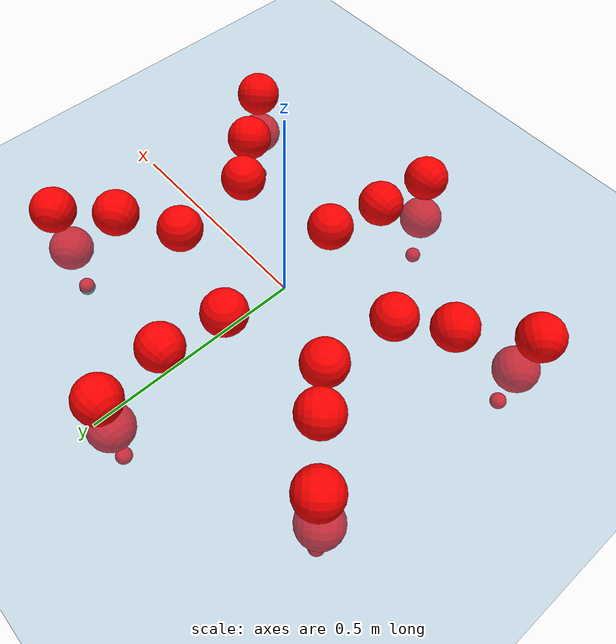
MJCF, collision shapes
<mujoco model="Golem">
  <compiler angle="radian" assetdir="assets" balanceinertia="true" inertiafromgeom="false"/>

  <option timestep="0.005" density="1.2" viscosity="2e-05"/>

  <size nkey="1"/>

  <visual>
    <quality shadowsize="8192"/>
    <map shadowclip="0.5"/>
  </visual>

  <default>
    <default class="/">
      <joint armature="0.01" damping="0.01" frictionloss="0.01"/>
      <geom contype="0" conaffinity="0" group="1" solref="-1000 -80"/>
      <site size="0.01 0.005 0.005" group="5"/>
      <general forcelimited="true" biastype="affine" gainprm="25" biasprm="0 -25 -0.5"/>
      <default class="visual">
        <geom type="mesh" group="2"/>
      </default>
      <default class="collision">
        <geom group="3"/>
      </default>
      <default class="foot">
        <geom size="0.01 0 0" condim="6" group="4" priority="1" solimp="0.015 1 0.01"/>
      </default>
      <default class="reward_collision_sphere">
        <geom group="5" rgba="1 0 0 1"/>
      </default>
    </default>
  </default>

  <asset>
    <texture type="skybox" colorspace="auto" name="//unnamed_texture_0" builtin="gradient" rgb1="0.95 0.95 0.95" rgb2="0.95 0.95 0.95" width="100" height="600"/>
    <texture type="2d" colorspace="auto" name="texplane" builtin="checker" rgb1="0.345 0.575 0.748" rgb2="0.345 0.575 0.748" markrgb="1 1 1" width="512" height="512"/>
    <material name="MatPlane" class="/" texture="texplane" texuniform="true" texrepeat="2 2" specular="0.9"/>
    <mesh name="body" class="/" file="body.stl" scale="0.001 0.001 0.001"/>
    <mesh name="coxa" class="/" file="coxa.stl" scale="0.001 0.001 0.001"/>
    <mesh name="femur" class="/" file="femur.stl" scale="0.001 0.001 0.001"/>
    <mesh name="tibia" class="/" file="tibia.stl" scale="0.001 0.001 0.001"/>
    <mesh name="tarsus" class="/" file="tarsus.stl" scale="0.001 0.001 0.001"/>
  </asset>

  <worldbody>
    <geom name="floor" class="/" size="100 100 0.125" type="plane" group="0" material="MatPlane"/>
    <light name="toplight_shadow" class="/" pos="0 0 5" dir="0.0990148 0.0990148 -0.990148" type="directional" ambient="0.04 0.04 0.04" diffuse="0.55 0.55 0.55" specular="0.12 0.12 0.12"/>
    <light name="toplight_fill" class="/" pos="0 0 5" dir="0.0990148 0.0990148 -0.990148" type="directional" castshadow="false" ambient="0.04 0.04 0.04" diffuse="0.3 0.3 0.3" specular="0.08 0.08 0.08"/>
    <body name="trunk" pos="0.0141848 -0.00225704 -0.00405936" quat="0.999961 0.000206431 -0.00879418 -0.000256355">
      <inertial pos="0.00689255 -0.0187715 -0.0174374" quat="0.998211 -0.0354105 0.0278522 -0.0393193" mass="9.07828" diaginertia="0.0914805 0.0563637 0.0100975"/>
      <joint name="//unnamed_joint_0" type="free"/>
      <geom name="//unnamed_geom_1" class="/" pos="0 0 0.0630094" quat="1 0 0 0" type="mesh" rgba="0.9 0.9 0.9 1" mesh="body"/>
      <site name="imu" class="/" pos="0.212774 -0.0782497 0.155063" size="0.0132174"/>
      <camera name="track" class="/" pos="0 -2.90541 0" quat="0.707107 0.707107 0 0" mode="trackcom"/>
      <camera name="ego_camera" class="/" pos="0.198641 0 0.0984521" quat="-0.5 -0.5 0.5 0.5"/>
      <body name="coxa_RR" pos="-0.276222 -0.136448 0.0551021" quat="0.376724 -0.00361065 -0.0033273 -0.926313">
        <inertial pos="-0.0130385 -0.0104546 -0.0108714" quat="0.995491 0.0837401 0.0337191 -0.0291284" mass="0.281375" diaginertia="0.0667836 0.0450784 0.00809246"/>
        <joint name="coxa_joint_RR" class="/" pos="0 0 0" axis="-0.00218193 0.011415 -0.999932" range="-3.13475 3.51633" armature="0.000987166" damping="0" frictionloss="0.0143068"/>
        <geom name="//unnamed_geom_2" class="/" type="mesh" rgba="0.2 0.2 0.2 1" mesh="coxa"/>
        <geom name="//unnamed_geom_3" class="reward_collision_sphere" size="0.0528697" pos="-0.0458401 0 0"/>
        <body name="femur_RR" pos="0.0802245 -0.0165062 0.00266274" quat="0.498522 -0.505024 0.496418 0.499995">
          <inertial pos="-0.0170414 -0.0103116 0.0030379" quat="0.996565 0.0483985 -0.000727608 -0.0672022" mass="0.48087" diaginertia="0.0854162 0.0666476 0.00877655"/>
          <joint name="femur_joint_RR" class="/" pos="0 0 0" axis="-0.00431058 -0.0111961 -0.999928" range="-3.38474 3.39484" armature="0.0127871" damping="0.0903272" frictionloss="0.00643719"/>
          <geom name="//unnamed_geom_4" class="/" type="mesh" rgba="0.9 0.9 0.9 1" mesh="femur"/>
          <geom name="//unnamed_geom_5" class="reward_collision_sphere" size="0.0528697"/>
          <body name="tibia_RR" pos="-0.00131196 -0.174859 -0.0127632" quat="-0.00460968 0.999983 0.00321871 -0.00166251">
            <inertial pos="0.014443 -0.00501985 -0.00434381" quat="0.998645 0.0341884 0.00812022 0.038393" mass="0.340691" diaginertia="0.0703342 0.0661713 0.00729705"/>
            <joint name="tibia_joint_RR" class="/" pos="0 0 0" axis="0.0730077 -0.0251808 0.997013" range="-2.94011 3.20081" armature="0.0131836" damping="0.00862292" frictionloss="0.0112184"/>
            <geom name="//unnamed_geom_6" class="/" type="mesh" rgba="0.2 0.2 0.2 1" mesh="tibia"/>
            <geom name="//unnamed_geom_7" class="reward_collision_sphere" size="0.0528697"/>
            <body name="tarsus_RR" pos="0.149815 -0.0136558 -0.00406688" quat="0.99998 -0.00560698 0.00208522 -0.00187435">
              <inertial pos="0.0898465 0.00621368 0.010411" quat="0.505394 0.495538 0.493066 0.50587" mass="0.358669" diaginertia="0.0708667 0.0536001 0.00690463"/>
              <joint name="tarsus_joint_RR" class="/" pos="0 0 0" axis="-0.0181588 -0.0281892 0.999438" range="-3.12564 3.13601" armature="0.00974619" damping="0.00174758" frictionloss="0.0231658"/>
              <geom name="//unnamed_geom_8" class="/" type="mesh" rgba="0.9 0.9 0.9 1" mesh="tarsus"/>
              <geom name="foot_1" class="foot" size="0.0160286" pos="0.171136 0 0" quat="0 -0.707107 0 0.707107"/>
              <geom name="//unnamed_geom_10" class="reward_collision_sphere" size="0.0528697"/>
              <geom name="//unnamed_geom_11" class="reward_collision_sphere" size="0.0198262" pos="0.16426 0 0"/>
              <site name="foot_1" class="foot" pos="0.171136 0 0" quat="0 -0.707107 0 0.707107" size="0.0132174"/>
            </body>
          </body>
        </body>
      </body>
      <body name="coxa_RM" pos="0.0170311 -0.208184 0.0604025" quat="0.708731 0.00207312 -0.00342193 -0.705467">
        <inertial pos="0.0166383 -0.00397201 0.00727098" quat="0.999883 0.0119484 0.00140577 0.00947432" mass="0.35643" diaginertia="0.0745075 0.0437571 0.00697069"/>
        <joint name="coxa_joint_RM" class="/" pos="0 0 0" axis="2.37635e-05 -0.00077707 -1" range="-3.43776 3.17515" armature="0.00325379" damping="0.00608104" frictionloss="0.0151316"/>
        <geom name="//unnamed_geom_12" class="/" type="mesh" rgba="0.2 0.2 0.2 1" mesh="coxa"/>
        <geom name="//unnamed_geom_13" class="reward_collision_sphere" size="0.0528697" pos="-0.0458401 0 0"/>
        <body name="femur_RM" pos="0.10109 -0.0182367 -0.016287" quat="0.501649 -0.503808 0.498632 0.495875">
          <inertial pos="-0.00533465 0.0119601 -0.00977405" quat="0.995844 -0.0883118 0.0222059 0.00185485" mass="0.493685" diaginertia="0.117106 0.0762539 0.0125197"/>
          <joint name="femur_joint_RM" class="/" pos="0 0 0" axis="-0.000341753 0.000507129 -1" range="-2.76877 3.30331" armature="0.0108904" damping="0" frictionloss="0.0135204"/>
          <geom name="//unnamed_geom_14" class="/" type="mesh" rgba="0.9 0.9 0.9 1" mesh="femur"/>
          <geom name="//unnamed_geom_15" class="reward_collision_sphere" size="0.0528697"/>
          <body name="tibia_RM" pos="0.0161971 -0.150494 -0.00855849" quat="0.00506942 0.999956 -0.00633622 -0.00469715">
            <inertial pos="0.0138406 -0.000795779 0.00801377" quat="0.99733 -0.0189106 0.0620324 -0.0335829" mass="0.454373" diaginertia="0.0924775 0.083132 0.0121345"/>
            <joint name="tibia_joint_RM" class="/" pos="0 0 0" axis="0.0285177 0.0314327 0.999099" stiffness="0.0839108" range="-3.14674 3.11425" armature="0.0171707" damping="0.0725821" frictionloss="0.0185229"/>
            <geom name="//unnamed_geom_16" class="/" type="mesh" rgba="0.2 0.2 0.2 1" mesh="tibia"/>
            <geom name="//unnamed_geom_17" class="reward_collision_sphere" size="0.0528697"/>
            <body name="tarsus_RM" pos="0.132277 -0.00904209 0.0146976" quat="0.999965 -0.00614156 -0.00546386 0.00142236">
              <inertial pos="0.0925766 -0.00635515 0.000772067" quat="0.467572 0.489943 0.510137 0.530182" mass="0.463415" diaginertia="0.0805594 0.0649959 0.00682675"/>
              <joint name="tarsus_joint_RM" class="/" pos="0 0 0" axis="0.0140687 -0.0781783 0.99684" range="-2.86417 2.76502" armature="0.0218128" damping="0.00266894" frictionloss="0.0255672"/>
              <geom name="//unnamed_geom_18" class="/" type="mesh" rgba="0.9 0.9 0.9 1" mesh="tarsus"/>
              <geom name="foot_2" class="foot" size="0.00898162" pos="0.171136 0 0" quat="0 -0.707107 0 0.707107"/>
              <geom name="//unnamed_geom_20" class="reward_collision_sphere" size="0.0528697"/>
              <geom name="//unnamed_geom_21" class="reward_collision_sphere" size="0.0198262" pos="0.16426 0 0"/>
              <site name="foot_2" class="foot" pos="0.171136 0 0" quat="0 -0.707107 0 0.707107" size="0.0132174"/>
            </body>
          </body>
        </body>
      </body>
      <body name="coxa_RF" pos="0.288671 -0.136007 0.0629727" quat="0.924746 0.00794096 -0.000150007 -0.380501">
        <inertial pos="-0.016982 -0.0172803 0.00019854" quat="0.99985 0.00602889 -0.0110872 -0.0118449" mass="0.416693" diaginertia="0.0892962 0.0736294 0.00873005"/>
        <joint name="coxa_joint_RF" class="/" pos="0 0 0" axis="-0.00913953 0.051656 -0.998623" stiffness="0.0927495" range="-3.36004 3.48599" armature="0.0201355" damping="0" frictionloss="0.00947973"/>
        <geom name="//unnamed_geom_22" class="/" type="mesh" rgba="0.2 0.2 0.2 1" mesh="coxa"/>
        <geom name="//unnamed_geom_23" class="reward_collision_sphere" size="0.0528697" pos="-0.0458401 0 0"/>
        <body name="femur_RF" pos="0.0784068 -0.00282472 0.00864779" quat="0.500845 -0.494285 0.50566 0.499145">
          <inertial pos="8.69716e-05 0.0123255 -0.0181951" quat="0.996857 0.00446981 -0.0772935 -0.0168044" mass="0.473368" diaginertia="0.103444 0.079406 0.0137823"/>
          <joint name="femur_joint_RF" class="/" pos="0 0 0" axis="-0.0891824 0.0242611 -0.99572" range="-3.03716 3.38215" armature="0" damping="0" frictionloss="0.00355285"/>
          <geom name="//unnamed_geom_24" class="/" type="mesh" rgba="0.9 0.9 0.9 1" mesh="femur"/>
          <geom name="//unnamed_geom_25" class="reward_collision_sphere" size="0.0528697"/>
          <body name="tibia_RF" pos="0.00753312 -0.168271 -0.0057089" quat="0.00250923 0.999983 -0.0029819 0.00435659">
            <inertial pos="0.00127536 0.000625476 0.00291989" quat="0.997213 -0.0452881 0.0109295 0.058277" mass="0.595405" diaginertia="0.0910242 0.073955 0.00837213"/>
            <joint name="tibia_joint_RF" class="/" pos="0 0 0" axis="-0.0333054 -0.0108985 0.999386" stiffness="0.0621248" range="-3.13296 2.79297" armature="0.00913729" damping="0.0138158" frictionloss="0.00703644"/>
            <geom name="//unnamed_geom_26" class="/" type="mesh" rgba="0.2 0.2 0.2 1" mesh="tibia"/>
            <geom name="//unnamed_geom_27" class="reward_collision_sphere" size="0.0528697"/>
            <body name="tarsus_RF" pos="0.132078 -0.0035486 0.00628568" quat="0.999958 0.00912451 0.000748581 0.000779458">
              <inertial pos="0.10036 -1.03682e-05 0.00152154" quat="0.502097 0.550353 0.48103 0.462192" mass="0.528448" diaginertia="0.0939437 0.079017 0.0129247"/>
              <joint name="tarsus_joint_RF" class="/" pos="0 0 0" axis="0.0283422 -0.0335682 0.999034" range="-3.13102 3.22385" armature="0.0142396" damping="0" frictionloss="0.00480183"/>
              <geom name="//unnamed_geom_28" class="/" type="mesh" rgba="0.9 0.9 0.9 1" mesh="tarsus"/>
              <geom name="foot_3" class="foot" size="0.00515646" pos="0.171136 0 0" quat="0 -0.707107 0 0.707107"/>
              <geom name="//unnamed_geom_30" class="reward_collision_sphere" size="0.0528697"/>
              <geom name="//unnamed_geom_31" class="reward_collision_sphere" size="0.0198262" pos="0.16426 0 0"/>
              <site name="foot_3" class="foot" pos="0.171136 0 0" quat="0 -0.707107 0 0.707107" size="0.0132174"/>
            </body>
          </body>
        </body>
      </body>
      <body name="coxa_LR" pos="-0.261145 0.114265 0.059658" quat="0.385137 0.00573633 -0.00510656 0.922828">
        <inertial pos="-0.00132861 0.00360829 -0.00907492" quat="0.999875 -0.00535511 0.0148343 0.000663998" mass="0.50339" diaginertia="0.0957742 0.0574466 0.0109243"/>
        <joint name="coxa_joint_LR" class="/" pos="0 0 0" axis="-0.0794729 0.0131236 -0.996751" stiffness="0.0511169" range="-3.44926 3.14451" armature="0.0199779" damping="0" frictionloss="0.0113762"/>
        <geom name="//unnamed_geom_32" class="/" type="mesh" rgba="0.2 0.2 0.2 1" mesh="coxa"/>
        <geom name="//unnamed_geom_33" class="reward_collision_sphere" size="0.0528697" pos="-0.0458401 0 0"/>
        <body name="femur_LR" pos="0.0737374 -0.00432772 0.0168783" quat="0.498901 -0.500315 0.496981 0.503778">
          <inertial pos="0.00110454 0.00589548 -0.0113555" quat="0.998683 0.0220427 -0.0457813 -0.00717086" mass="0.410183" diaginertia="0.0719721 0.0750156 0.00785026"/>
          <joint name="femur_joint_LR" class="/" pos="0 0 0" axis="-0.0320858 -0.00520478 0.999472" stiffness="0.0680633" range="-2.80583 2.80977" armature="0.0135754" damping="0.0941728" frictionloss="0.0189634"/>
          <geom name="//unnamed_geom_34" class="/" type="mesh" rgba="0.9 0.9 0.9 1" mesh="femur"/>
          <geom name="//unnamed_geom_35" class="reward_collision_sphere" size="0.0528697"/>
          <body name="tibia_LR" pos="0.00108711 -0.155576 0.00324467" quat="0.00151621 0.999991 0.00127988 0.00371234">
            <inertial pos="0.0186147 0.00885839 0.0172133" quat="0.999536 0.00824238 -0.0129036 -0.0263503" mass="0.458286" diaginertia="0.0864813 0.0556305 0.0116083"/>
            <joint name="tibia_joint_LR" class="/" pos="0 0 0" axis="-0.00167533 -0.00689989 -0.999975" stiffness="0.0633785" range="-3.48308 2.84248" armature="0.0213259" damping="0" frictionloss="0.0195901"/>
            <geom name="//unnamed_geom_36" class="/" type="mesh" rgba="0.2 0.2 0.2 1" mesh="tibia"/>
            <geom name="//unnamed_geom_37" class="reward_collision_sphere" size="0.0528697"/>
            <body name="tarsus_LR" pos="0.137754 0.0111783 -0.00861695" quat="0.999999 0.000311495 -0.000752227 -0.000864782">
              <inertial pos="0.0849347 -0.00126029 -0.00854246" quat="0.504788 0.497488 0.512315 0.485003" mass="0.416504" diaginertia="0.0760776 0.0427008 0.00734178"/>
              <joint name="tarsus_joint_LR" class="/" pos="0 0 0" axis="-0.0444431 0.0748702 -0.996202" range="-3.01435 3.43434" armature="0.0181296" damping="0.0492134" frictionloss="0.00351168"/>
              <geom name="//unnamed_geom_38" class="/" type="mesh" rgba="0.9 0.9 0.9 1" mesh="tarsus"/>
              <geom name="foot_4" class="foot" size="0.00883332" pos="0.171136 0 0" quat="0.707107 0 -0.707107 0"/>
              <geom name="//unnamed_geom_40" class="reward_collision_sphere" size="0.0528697"/>
              <geom name="//unnamed_geom_41" class="reward_collision_sphere" size="0.0198262" pos="0.16426 0 0"/>
              <site name="foot_4" class="foot" pos="0.171136 0 0" quat="0.707107 0 -0.707107 0" size="0.0132174"/>
            </body>
          </body>
        </body>
      </body>
      <body name="coxa_LM" pos="-0.00633675 0.208191 0.0620066" quat="0.709273 0.00426586 -0.00124129 0.70492">
        <inertial pos="-0.0171323 -0.0183329 -0.00913009" quat="0.999994 -0.00199675 -0.00123222 0.00272607" mass="0.46468" diaginertia="0.0754002 0.0662383 0.0095236"/>
        <joint name="coxa_joint_LM" class="/" pos="0 0 0" axis="-0.0314737 0.0198041 -0.999308" stiffness="0.0732441" range="-3.39501 3.39578" armature="0.00213578" damping="0.0137636" frictionloss="0.00494669"/>
        <geom name="//unnamed_geom_42" class="/" type="mesh" rgba="0.2 0.2 0.2 1" mesh="coxa"/>
        <geom name="//unnamed_geom_43" class="reward_collision_sphere" size="0.0528697" pos="-0.0458401 0 0"/>
        <body name="femur_LM" pos="0.107439 -0.0134423 0.0103263" quat="0.492473 -0.501 0.504352 0.502094">
          <inertial pos="0.0134505 -0.0124522 0.00658491" quat="0.997255 -0.0536527 -0.0253616 0.0442863" mass="0.410957" diaginertia="0.0610242 0.0679741 0.0074928"/>
          <joint name="femur_joint_LM" class="/" pos="0 0 0" axis="0.0154043 -0.0409089 0.999044" range="-3.34239 3.15061" armature="0.0250006" damping="0.0128244" frictionloss="0.0101879"/>
          <geom name="//unnamed_geom_44" class="/" type="mesh" rgba="0.9 0.9 0.9 1" mesh="femur"/>
          <geom name="//unnamed_geom_45" class="reward_collision_sphere" size="0.0528697"/>
          <body name="tibia_LM" pos="-7.9367e-05 -0.158909 0.014243" quat="0.00039411 0.999998 -0.00037359 -0.00210596">
            <inertial pos="-0.00902473 -0.0163767 -0.0113005" quat="0.998898 -0.0125112 0.0359561 0.0274643" mass="0.478791" diaginertia="0.0966994 0.0602604 0.00831846"/>
            <joint name="tibia_joint_LM" class="/" pos="0 0 0" axis="-0.00145354 -0.0641421 -0.99794" stiffness="0.0418778" range="-2.94898 2.85414" armature="0.0132037" damping="0.0363259" frictionloss="0.0216596"/>
            <geom name="//unnamed_geom_46" class="/" type="mesh" rgba="0.2 0.2 0.2 1" mesh="tibia"/>
            <geom name="//unnamed_geom_47" class="reward_collision_sphere" size="0.0528697"/>
            <body name="tarsus_LM" pos="0.120293 -0.000422103 -0.00901695" quat="1 0.00043554 0.000498006 0.000641019">
              <inertial pos="0.0982939 -0.00093373 0.000961249" quat="0.487558 0.461062 0.543085 0.504745" mass="0.282478" diaginertia="0.0569265 0.0479821 0.00883125"/>
              <joint name="tarsus_joint_LM" class="/" pos="0 0 0" axis="-0.0304458 -0.0438141 -0.998576" range="-3.13812 3.41329" armature="0.0146005" damping="0" frictionloss="0.013444"/>
              <geom name="//unnamed_geom_48" class="/" type="mesh" rgba="0.9 0.9 0.9 1" mesh="tarsus"/>
              <geom name="foot_5" class="foot" size="0.00863529" pos="0.171136 0 0" quat="0.707107 0 -0.707107 0"/>
              <geom name="//unnamed_geom_50" class="reward_collision_sphere" size="0.0528697"/>
              <geom name="//unnamed_geom_51" class="reward_collision_sphere" size="0.0198262" pos="0.16426 0 0"/>
              <site name="foot_5" class="foot" pos="0.171136 0 0" quat="0.707107 0 -0.707107 0" size="0.0132174"/>
            </body>
          </body>
        </body>
      </body>
      <body name="coxa_LF" pos="0.266392 0.131541 0.0599358" quat="0.924148 5.73932e-05 -0.000638322 0.382035">
        <inertial pos="-0.000873436 -0.00802609 0.000533906" quat="0.999999 0.000538041 -0.00122429 -0.000872816" mass="0.598951" diaginertia="0.106078 0.0698768 0.00986189"/>
        <joint name="coxa_joint_LF" class="/" pos="0 0 0" axis="-0.0767553 -0.0416753 -0.996179" range="-3.23603 3.35793" armature="0.00658273" damping="0.0172137" frictionloss="0.0135826"/>
        <geom name="//unnamed_geom_52" class="/" type="mesh" rgba="0.2 0.2 0.2 1" mesh="coxa"/>
        <geom name="//unnamed_geom_53" class="reward_collision_sphere" size="0.0528697" pos="-0.0458401 0 0"/>
        <body name="femur_LF" pos="0.100422 -0.0184604 0.0189735" quat="0.498534 -0.49769 0.501433 0.502327">
          <inertial pos="0.0158979 -0.0109402 0.00830937" quat="0.999849 -0.00314819 -0.0169042 -0.00264492" mass="0.436134" diaginertia="0.104602 0.0885202 0.0100989"/>
          <joint name="femur_joint_LF" class="/" pos="0 0 0" axis="0.0447787 -0.0639001 0.996951" range="-3.1565 3.47462" armature="0.0233353" damping="0.0124108" frictionloss="0.00834788"/>
          <geom name="//unnamed_geom_54" class="/" type="mesh" rgba="0.9 0.9 0.9 1" mesh="femur"/>
          <geom name="//unnamed_geom_55" class="reward_collision_sphere" size="0.0528697"/>
          <body name="tibia_LF" pos="0.0172107 -0.150723 -0.0111274" quat="0.00408473 0.999991 0.00087935 0.000335282">
            <inertial pos="-0.00895482 -0.0112634 -0.00604619" quat="0.996432 -0.0384733 -0.0178591 0.0729648" mass="0.469352" diaginertia="0.0827836 0.054531 0.00838398"/>
            <joint name="tibia_joint_LF" class="/" pos="0 0 0" axis="-0.00638735 -0.00244165 -0.999977" stiffness="0.0193253" range="-3.19955 3.37816" armature="0.0259007" damping="0.00198084" frictionloss="0.0138805"/>
            <geom name="//unnamed_geom_56" class="/" type="mesh" rgba="0.2 0.2 0.2 1" mesh="tibia"/>
            <geom name="//unnamed_geom_57" class="reward_collision_sphere" size="0.0528697"/>
            <body name="tarsus_LF" pos="0.13934 -0.011391 -0.00406346" quat="0.999956 0.00719895 -0.00157216 -0.00574804">
              <inertial pos="0.076888 0.016415 -0.00439465" quat="0.490899 0.511177 0.508626 0.488893" mass="0.518043" diaginertia="0.109212 0.0757747 0.0118716"/>
              <joint name="tarsus_joint_LF" class="/" pos="0 0 0" axis="0.0677605 0.0455409 -0.996662" range="-3.45948 3.03118" armature="0.00906363" damping="0" frictionloss="0.0153446"/>
              <geom name="//unnamed_geom_58" class="/" type="mesh" rgba="0.9 0.9 0.9 1" mesh="tarsus"/>
              <geom name="foot_6" class="foot" size="0.0206045" pos="0.171136 0 0" quat="0.707107 0 -0.707107 0"/>
              <geom name="//unnamed_geom_60" class="reward_collision_sphere" size="0.0528697"/>
              <geom name="//unnamed_geom_61" class="reward_collision_sphere" size="0.0198262" pos="0.16426 0 0"/>
              <site name="foot_6" class="foot" pos="0.171136 0 0" quat="0.707107 0 -0.707107 0" size="0.0132174"/>
            </body>
          </body>
        </body>
      </body>
    </body>
  </worldbody>

  <contact>
    <pair class="/" geom1="floor" geom2="foot_1" name="//unnamed_contact_0"/>
    <pair class="/" geom1="floor" geom2="foot_2" name="//unnamed_contact_1"/>
    <pair class="/" geom1="floor" geom2="foot_3" name="//unnamed_contact_2"/>
    <pair class="/" geom1="floor" geom2="foot_4" name="//unnamed_contact_3"/>
    <pair class="/" geom1="floor" geom2="foot_5" name="//unnamed_contact_4"/>
    <pair class="/" geom1="floor" geom2="foot_6" name="//unnamed_contact_5"/>
  </contact>

  <actuator>
    <general name="coxa_joint_RR" class="/" joint="coxa_joint_RR" forcerange="-7.82491 7.82491" gainprm="22.1497" biasprm="0 -22.1497 -0.849183"/>
    <general name="femur_joint_RR" class="/" joint="femur_joint_RR" forcerange="-9.64222 9.64222" gainprm="22.1497" biasprm="0 -22.1497 -0.849183"/>
    <general name="tibia_joint_RR" class="/" joint="tibia_joint_RR" forcerange="-8.27742 8.27742" gainprm="22.1497" biasprm="0 -22.1497 -0.849183"/>
    <general name="tarsus_joint_RR" class="/" joint="tarsus_joint_RR" forcerange="-12.6324 12.6324" gainprm="22.1497" biasprm="0 -22.1497 -0.849183"/>
    <general name="coxa_joint_RM" class="/" joint="coxa_joint_RM" forcerange="-12.8057 12.8057" gainprm="22.1497" biasprm="0 -22.1497 -0.849183"/>
    <general name="femur_joint_RM" class="/" joint="femur_joint_RM" forcerange="-15.0279 15.0279" gainprm="22.1497" biasprm="0 -22.1497 -0.849183"/>
    <general name="tibia_joint_RM" class="/" joint="tibia_joint_RM" forcerange="-9.56414 9.56414" gainprm="22.1497" biasprm="0 -22.1497 -0.849183"/>
    <general name="tarsus_joint_RM" class="/" joint="tarsus_joint_RM" forcerange="-6.22506 6.22506" gainprm="22.1497" biasprm="0 -22.1497 -0.849183"/>
    <general name="coxa_joint_RF" class="/" joint="coxa_joint_RF" forcerange="-15.2375 15.2375" gainprm="22.1497" biasprm="0 -22.1497 -0.849183"/>
    <general name="femur_joint_RF" class="/" joint="femur_joint_RF" forcerange="-14.849 14.849" gainprm="22.1497" biasprm="0 -22.1497 -0.849183"/>
    <general name="tibia_joint_RF" class="/" joint="tibia_joint_RF" forcerange="-4.60911 4.60911" gainprm="22.1497" biasprm="0 -22.1497 -0.849183"/>
    <general name="tarsus_joint_RF" class="/" joint="tarsus_joint_RF" forcerange="-5.83385 5.83385" gainprm="22.1497" biasprm="0 -22.1497 -0.849183"/>
    <general name="coxa_joint_LR" class="/" joint="coxa_joint_LR" forcerange="-11.6036 11.6036" gainprm="22.1497" biasprm="0 -22.1497 -0.849183"/>
    <general name="femur_joint_LR" class="/" joint="femur_joint_LR" forcerange="-13.9296 13.9296" gainprm="22.1497" biasprm="0 -22.1497 -0.849183"/>
    <general name="tibia_joint_LR" class="/" joint="tibia_joint_LR" forcerange="-15.9471 15.9471" gainprm="22.1497" biasprm="0 -22.1497 -0.849183"/>
    <general name="tarsus_joint_LR" class="/" joint="tarsus_joint_LR" forcerange="-3.07991 3.07991" gainprm="22.1497" biasprm="0 -22.1497 -0.849183"/>
    <general name="coxa_joint_LM" class="/" joint="coxa_joint_LM" forcerange="-5.5121 5.5121" gainprm="22.1497" biasprm="0 -22.1497 -0.849183"/>
    <general name="femur_joint_LM" class="/" joint="femur_joint_LM" forcerange="-8.89624 8.89624" gainprm="22.1497" biasprm="0 -22.1497 -0.849183"/>
    <general name="tibia_joint_LM" class="/" joint="tibia_joint_LM" forcerange="-10.0229 10.0229" gainprm="22.1497" biasprm="0 -22.1497 -0.849183"/>
    <general name="tarsus_joint_LM" class="/" joint="tarsus_joint_LM" forcerange="-13.3166 13.3166" gainprm="22.1497" biasprm="0 -22.1497 -0.849183"/>
    <general name="coxa_joint_LF" class="/" joint="coxa_joint_LF" forcerange="-10.1077 10.1077" gainprm="22.1497" biasprm="0 -22.1497 -0.849183"/>
    <general name="femur_joint_LF" class="/" joint="femur_joint_LF" forcerange="-9.55659 9.55659" gainprm="22.1497" biasprm="0 -22.1497 -0.849183"/>
    <general name="tibia_joint_LF" class="/" joint="tibia_joint_LF" forcerange="-6.23689 6.23689" gainprm="22.1497" biasprm="0 -22.1497 -0.849183"/>
    <general name="tarsus_joint_LF" class="/" joint="tarsus_joint_LF" forcerange="-11.4598 11.4598" gainprm="22.1497" biasprm="0 -22.1497 -0.849183"/>
  </actuator>

  <sensor>
    <gyro site="imu" name="imu_angular_velocity"/>
    <velocimeter site="imu" name="imu_linear_velocity"/>
    <framelinvel objtype="site" objname="foot_1" name="foot_1_global_linear_velocity"/>
    <framelinvel objtype="site" objname="foot_2" name="foot_2_global_linear_velocity"/>
    <framelinvel objtype="site" objname="foot_3" name="foot_3_global_linear_velocity"/>
    <framelinvel objtype="site" objname="foot_4" name="foot_4_global_linear_velocity"/>
    <framelinvel objtype="site" objname="foot_5" name="foot_5_global_linear_velocity"/>
    <framelinvel objtype="site" objname="foot_6" name="foot_6_global_linear_velocity"/>
  </sensor>

  <keyframe>
    <key name="home" qpos="0 0 0.1457 1 0 0 0 0 0 0 0 0 0 0 0 0 0 0 0 0 0 0 0 0 0 0 0 0 0 0 0"/>
  </keyframe>
</mujoco>
